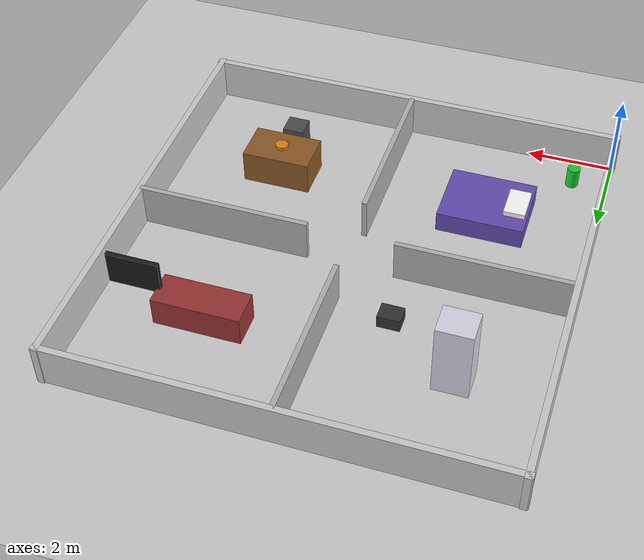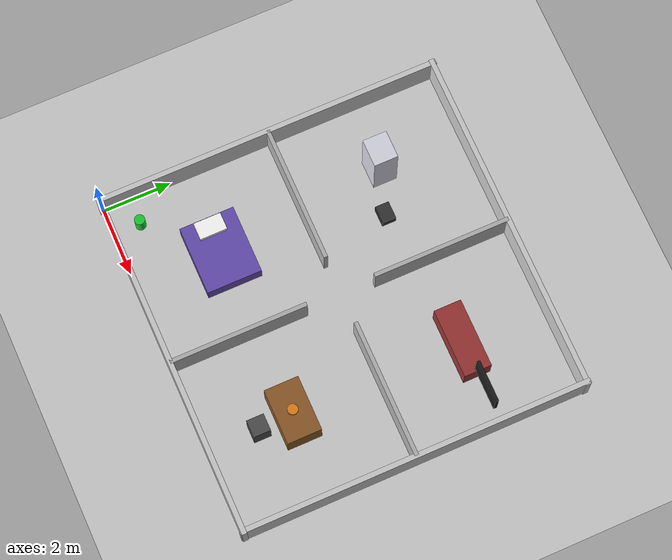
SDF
<?xml version="1.0" ?>
<sdf version="1.6">
  <world name="scene_house">

    <include>
      <uri>model://ground_plane</uri>
    </include>
    <include>
      <uri>model://sun</uri>
    </include>

    <physics type="ode">
      <real_time_update_rate>1000.0</real_time_update_rate>
      <max_step_size>0.001</max_step_size>
    </physics>

    <!-- ==================== 外墙 (10m x 10m) ==================== -->
    <model name="wall_north">
      <static>true</static>
      <pose>5 10 0.5 0 0 0</pose>
      <link name="link">
        <collision name="col"><geometry><box><size>10.2 0.15 1.0</size></box></geometry></collision>
        <visual name="vis"><geometry><box><size>10.2 0.15 1.0</size></box></geometry>
          <material><ambient>0.8 0.8 0.8 1</ambient></material></visual>
      </link>
    </model>
    <model name="wall_south">
      <static>true</static>
      <pose>5 0 0.5 0 0 0</pose>
      <link name="link">
        <collision name="col"><geometry><box><size>10.2 0.15 1.0</size></box></geometry></collision>
        <visual name="vis"><geometry><box><size>10.2 0.15 1.0</size></box></geometry>
          <material><ambient>0.8 0.8 0.8 1</ambient></material></visual>
      </link>
    </model>
    <model name="wall_west">
      <static>true</static>
      <pose>0 5 0.5 0 0 0</pose>
      <link name="link">
        <collision name="col"><geometry><box><size>0.15 10.2 1.0</size></box></geometry></collision>
        <visual name="vis"><geometry><box><size>0.15 10.2 1.0</size></box></geometry>
          <material><ambient>0.8 0.8 0.8 1</ambient></material></visual>
      </link>
    </model>
    <model name="wall_east">
      <static>true</static>
      <pose>10 5 0.5 0 0 0</pose>
      <link name="link">
        <collision name="col"><geometry><box><size>0.15 10.2 1.0</size></box></geometry></collision>
        <visual name="vis"><geometry><box><size>0.15 10.2 1.0</size></box></geometry>
          <material><ambient>0.8 0.8 0.8 1</ambient></material></visual>
      </link>
    </model>

    <!-- ==================== 内墙 (十字分隔，留门洞) ==================== -->
    <model name="wall_mid_x_west">
      <static>true</static>
      <pose>5 2.0 0.5 0 0 0</pose>
      <link name="link">
        <collision name="col"><geometry><box><size>0.12 4.0 1.0</size></box></geometry></collision>
        <visual name="vis"><geometry><box><size>0.12 4.0 1.0</size></box></geometry>
          <material><ambient>0.7 0.7 0.7 1</ambient></material></visual>
      </link>
    </model>
    <model name="wall_mid_x_east">
      <static>true</static>
      <pose>5 8.0 0.5 0 0 0</pose>
      <link name="link">
        <collision name="col"><geometry><box><size>0.12 4.0 1.0</size></box></geometry></collision>
        <visual name="vis"><geometry><box><size>0.12 4.0 1.0</size></box></geometry>
          <material><ambient>0.7 0.7 0.7 1</ambient></material></visual>
      </link>
    </model>
    <model name="wall_mid_y_south">
      <static>true</static>
      <pose>2.0 5 0.5 0 0 0</pose>
      <link name="link">
        <collision name="col"><geometry><box><size>4.0 0.12 1.0</size></box></geometry></collision>
        <visual name="vis"><geometry><box><size>4.0 0.12 1.0</size></box></geometry>
          <material><ambient>0.7 0.7 0.7 1</ambient></material></visual>
      </link>
    </model>
    <model name="wall_mid_y_north">
      <static>true</static>
      <pose>8.0 5 0.5 0 0 0</pose>
      <link name="link">
        <collision name="col"><geometry><box><size>4.0 0.12 1.0</size></box></geometry></collision>
        <visual name="vis"><geometry><box><size>4.0 0.12 1.0</size></box></geometry>
          <material><ambient>0.7 0.7 0.7 1</ambient></material></visual>
      </link>
    </model>

    <!-- ==================== 卧室 (西南, 0-5 x 0-5) ==================== -->
    <model name="bed">
      <static>true</static>
      <pose>2.5 2.5 0.25 0 0 0</pose>
      <link name="link">
        <!-- 仅视觉，无碰撞，避免小车被卡住 -->
        <visual name="vis"><geometry><box><size>2.0 1.6 0.5</size></box></geometry>
          <material><ambient>0.4 0.3 0.7 1</ambient></material></visual>
      </link>
    </model>
    <model name="pillow">
      <static>true</static>
      <pose>1.8 2.5 0.55 0 0 0</pose>
      <link name="link">
        <visual name="vis"><geometry><box><size>0.5 0.8 0.15</size></box></geometry>
          <material><ambient>1.0 1.0 1.0 1</ambient></material></visual>
      </link>
    </model>

    <!-- ==================== 餐厅 (东南, 5-10 x 0-5) ==================== -->
    <model name="dining_table">
      <static>true</static>
      <pose>7.5 2.5 0.4 0 0 0</pose>
      <link name="link">
        <visual name="vis"><geometry><box><size>1.6 1.0 0.8</size></box></geometry>
          <material><ambient>0.55 0.35 0.15 1</ambient></material></visual>
      </link>
    </model>
    <model name="dining_chair">
      <static>true</static>
      <pose>7.5 1.5 0.35 0 0 0</pose>
      <link name="link">
        <visual name="vis"><geometry><box><size>0.5 0.5 0.7</size></box></geometry>
          <material><ambient>0.3 0.3 0.3 1</ambient></material></visual>
      </link>
    </model>
    <model name="food_bowl">
      <static>true</static>
      <pose>7.5 2.5 0.85 0 0 0</pose>
      <link name="link">
        <visual name="vis"><geometry><cylinder><radius>0.15</radius><length>0.08</length></cylinder></geometry>
          <material><ambient>0.9 0.5 0.1 1</ambient></material></visual>
      </link>
    </model>

    <!-- ==================== 厨房 (西北, 0-5 x 5-10) ==================== -->
    <model name="refrigerator">
      <static>true</static>
      <pose>2.0 7.5 0.9 0 0 0</pose>
      <link name="link">
        <visual name="vis"><geometry><box><size>0.8 0.7 1.8</size></box></geometry>
          <material><ambient>0.85 0.85 0.9 1</ambient></material></visual>
      </link>
    </model>
    <model name="microwave">
      <static>true</static>
      <pose>3.5 7.0 0.9 0 0 0</pose>
      <link name="link">
        <visual name="vis"><geometry><box><size>0.5 0.4 0.3</size></box></geometry>
          <material><ambient>0.2 0.2 0.2 1</ambient></material></visual>
      </link>
    </model>

    <!-- ==================== 客厅 (东北, 5-10 x 5-10) ==================== -->
    <model name="sofa">
      <static>true</static>
      <pose>7.5 7.5 0.35 0 0 0</pose>
      <link name="link">
        <visual name="vis"><geometry><box><size>2.0 0.8 0.7</size></box></geometry>
          <material><ambient>0.6 0.2 0.2 1</ambient></material></visual>
      </link>
    </model>
    <model name="tv">
      <static>true</static>
      <pose>9.0 7.5 1.0 0 0 1.57</pose>
      <link name="link">
        <visual name="vis"><geometry><box><size>0.1 1.2 0.8</size></box></geometry>
          <material><ambient>0.1 0.1 0.1 1</ambient></material></visual>
      </link>
    </model>

    <!-- 汇报区标记柱 -->
    <model name="report_marker">
      <static>true</static>
      <pose>0.8 0.8 0.25 0 0 0</pose>
      <link name="link">
        <visual name="vis"><geometry><cylinder><radius>0.15</radius><length>0.5</length></cylinder></geometry>
          <material><ambient>0.1 0.8 0.2 1</ambient></material></visual>
      </link>
    </model>

  </world>
</sdf>
